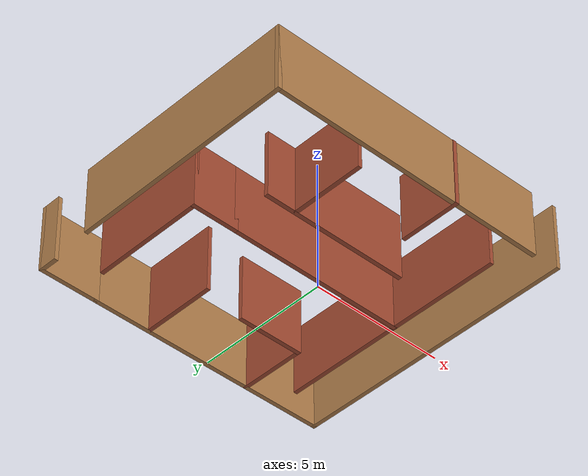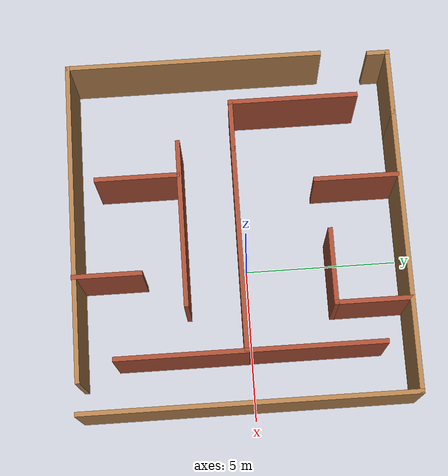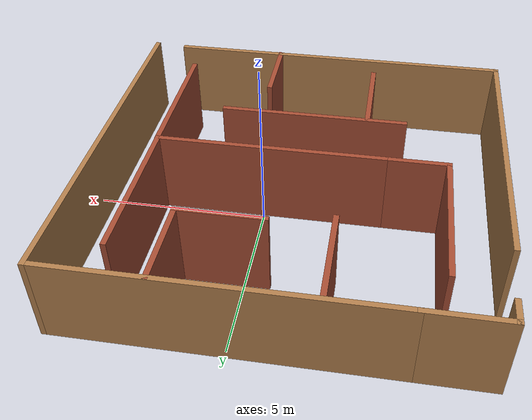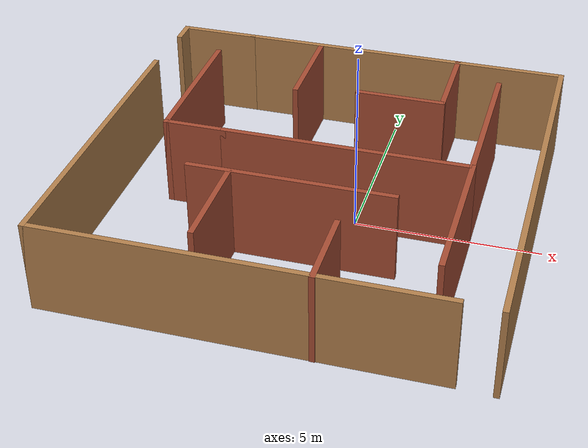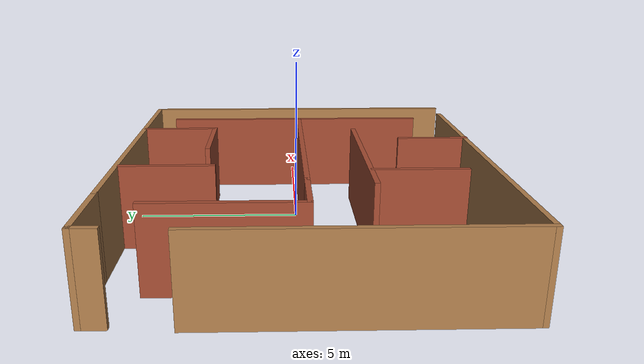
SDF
<?xml version='1.0'?>
<sdf version='1.7'>
  <model name='maze_map'>
    <pose>-1.01306 -0.193208 0 0 -0 0</pose>
    <link name='Wall_32'>
      <collision name='Wall_32_Collision'>
        <geometry>
          <box>
            <size>9.26507 0.15 2.5</size>
          </box>
        </geometry>
        <pose>0 0 1.25 0 -0 0</pose>
      </collision>
      <visual name='Wall_32_Visual'>
        <pose>0 0 1.25 0 -0 0</pose>
        <geometry>
          <box>
            <size>9.26507 0.15 2.5</size>
          </box>
        </geometry>
        <material>
          <script>
            <uri>file://media/materials/scripts/gazebo.material</uri>
            <name>Gazebo/Wood</name>
          </script>
          <ambient>1 1 1 1</ambient>
        </material>
        <meta>
          <layer>0</layer>
        </meta>
      </visual>
      <pose>1.09431 5.3 0 0 -0 0</pose>
    </link>
    <link name='Wall_33'>
      <collision name='Wall_33_Collision'>
        <geometry>
          <box>
            <size>10.75 0.15 2.5</size>
          </box>
        </geometry>
        <pose>0 0 1.25 0 -0 0</pose>
      </collision>
      <visual name='Wall_33_Visual'>
        <pose>0 0 1.25 0 -0 0</pose>
        <geometry>
          <box>
            <size>10.75 0.15 2.5</size>
          </box>
        </geometry>
        <material>
          <script>
            <uri>file://media/materials/scripts/gazebo.material</uri>
            <name>Gazebo/Wood</name>
          </script>
          <ambient>1 1 1 1</ambient>
        </material>
        <meta>
          <layer>0</layer>
        </meta>
      </visual>
      <pose>5.67844 0 0 0 -0 -1.5708</pose>
    </link>
    <link name='Wall_35'>
      <collision name='Wall_35_Collision'>
        <geometry>
          <box>
            <size>8.43856 0.15 2.5</size>
          </box>
        </geometry>
        <pose>0 0 1.25 0 -0 0</pose>
      </collision>
      <visual name='Wall_35_Visual'>
        <pose>0 0 1.25 0 -0 0</pose>
        <geometry>
          <box>
            <size>8.43856 0.15 2.5</size>
          </box>
        </geometry>
        <material>
          <script>
            <uri>file://media/materials/scripts/gazebo.material</uri>
            <name>Gazebo/Wood</name>
          </script>
          <ambient>1 1 1 1</ambient>
        </material>
        <meta>
          <layer>0</layer>
        </meta>
      </visual>
      <pose>-5.67844 -1.11167 0 0 -0 1.5708</pose>
    </link>
    <link name='Wall_38'>
      <collision name='Wall_38_Collision'>
        <geometry>
          <box>
            <size>2.25 0.15 2.5</size>
          </box>
        </geometry>
        <pose>0 0 1.25 0 -0 0</pose>
      </collision>
      <visual name='Wall_38_Visual'>
        <pose>0 0 1.25 0 -0 0</pose>
        <geometry>
          <box>
            <size>2.25 0.15 2.5</size>
          </box>
        </geometry>
        <material>
          <script>
            <uri>file://media/materials/scripts/gazebo.material</uri>
            <name>Gazebo/Wood</name>
          </script>
          <ambient>1 1 1 1</ambient>
        </material>
        <meta>
          <layer>0</layer>
        </meta>
      </visual>
      <pose>-4.51323 5.3 0 0 -0 3.14159</pose>
    </link>
    <link name='Wall_39'>
      <collision name='Wall_39_Collision'>
        <geometry>
          <box>
            <size>0.75 0.15 2.5</size>
          </box>
        </geometry>
        <pose>0 0 1.25 0 -0 0</pose>
      </collision>
      <visual name='Wall_39_Visual'>
        <pose>0 0 1.25 0 -0 0</pose>
        <geometry>
          <box>
            <size>0.75 0.15 2.5</size>
          </box>
        </geometry>
        <material>
          <script>
            <uri>file://media/materials/scripts/gazebo.material</uri>
            <name>Gazebo/Wood</name>
          </script>
          <ambient>1 1 1 1</ambient>
        </material>
        <meta>
          <layer>0</layer>
        </meta>
      </visual>
      <pose>-5.56323 5 0 0 -0 -1.5708</pose>
    </link>
    <link name='Wall_41'>
      <collision name='Wall_41_Collision'>
        <geometry>
          <box>
            <size>10.5 0.15 2.5</size>
          </box>
        </geometry>
        <pose>0 0 1.25 0 -0 0</pose>
      </collision>
      <visual name='Wall_41_Visual'>
        <pose>0 0 1.25 0 -0 0</pose>
        <geometry>
          <box>
            <size>10.5 0.15 2.5</size>
          </box>
        </geometry>
        <material>
          <script>
            <uri>file://media/materials/scripts/gazebo.material</uri>
            <name>Gazebo/Wood</name>
          </script>
          <ambient>1 1 1 1</ambient>
        </material>
        <meta>
          <layer>0</layer>
        </meta>
      </visual>
      <pose>-0.503444 -5.25595 0 0 -0 0</pose>
    </link>
    <link name='Wall_46'>
      <collision name='Wall_46_Collision'>
        <geometry>
          <box>
            <size>4.25 0.15 2.5</size>
          </box>
        </geometry>
        <pose>0 0 1.25 0 -0 0</pose>
      </collision>
      <visual name='Wall_46_Visual'>
        <pose>0 0 1.25 0 -0 0</pose>
        <geometry>
          <box>
            <size>4.25 0.15 2.5</size>
          </box>
        </geometry>
        <material>
          <script>
            <uri>file://media/materials/scripts/gazebo.material</uri>
            <name>Gazebo/Bricks</name>
          </script>
          <ambient>1 1 1 1</ambient>
        </material>
        <meta>
          <layer>0</layer>
        </meta>
      </visual>
      <pose>-4.14781 2.06569 0 0 -0 -1.5708</pose>
    </link>
    <link name='Wall_48'>
      <collision name='Wall_48_Collision'>
        <geometry>
          <box>
            <size>1.75 0.15 2.5</size>
          </box>
        </geometry>
        <pose>0 0 1.25 0 -0 0</pose>
      </collision>
      <visual name='Wall_48_Visual'>
        <pose>0 0 1.25 0 -0 0</pose>
        <geometry>
          <box>
            <size>1.75 0.15 2.5</size>
          </box>
        </geometry>
        <material>
          <script>
            <uri>file://media/materials/scripts/gazebo.material</uri>
            <name>Gazebo/Bricks</name>
          </script>
          <ambient>1 1 1 1</ambient>
        </material>
        <meta>
          <layer>0</layer>
        </meta>
      </visual>
      <pose>-3.34781 0.01569 0 0 -0 0</pose>
    </link>
    <link name='Wall_50'>
      <collision name='Wall_50_Collision'>
        <geometry>
          <box>
            <size>2.75 0.15 2.5</size>
          </box>
        </geometry>
        <pose>0 0 1.25 0 -0 0</pose>
      </collision>
      <visual name='Wall_50_Visual'>
        <pose>0 0 1.25 0 -0 0</pose>
        <geometry>
          <box>
            <size>2.75 0.15 2.5</size>
          </box>
        </geometry>
        <material>
          <script>
            <uri>file://media/materials/scripts/gazebo.material</uri>
            <name>Gazebo/Bricks</name>
          </script>
          <ambient>1 1 1 1</ambient>
        </material>
        <meta>
          <layer>0</layer>
        </meta>
      </visual>
      <pose>-1.33191 3.90182 0 0 -0 -1.5708</pose>
    </link>
    <link name='Wall_52'>
      <collision name='Wall_52_Collision'>
        <geometry>
          <box>
            <size>5.5 0.15 2.5</size>
          </box>
        </geometry>
        <pose>0 0 1.25 0 -0 0</pose>
      </collision>
      <visual name='Wall_52_Visual'>
        <pose>0 0 1.25 0 -0 0</pose>
        <geometry>
          <box>
            <size>5.5 0.15 2.5</size>
          </box>
        </geometry>
        <material>
          <script>
            <uri>file://media/materials/scripts/gazebo.material</uri>
            <name>Gazebo/Bricks</name>
          </script>
          <ambient>1 1 1 1</ambient>
        </material>
        <meta>
          <layer>0</layer>
        </meta>
      </visual>
      <pose>-0.189992 -1.77875 0 0 -0 0</pose>
    </link>
    <link name='Wall_54'>
      <collision name='Wall_54_Collision'>
        <geometry>
          <box>
            <size>2.5 0.15 2.5</size>
          </box>
        </geometry>
        <pose>0 0 1.25 0 -0 0</pose>
      </collision>
      <visual name='Wall_54_Visual'>
        <pose>0 0 1.25 0 -0 0</pose>
        <geometry>
          <box>
            <size>2.5 0.15 2.5</size>
          </box>
        </geometry>
        <material>
          <script>
            <uri>file://media/materials/scripts/gazebo.material</uri>
            <name>Gazebo/Bricks</name>
          </script>
          <ambient>1 1 1 1</ambient>
        </material>
        <meta>
          <layer>0</layer>
        </meta>
      </visual>
      <pose>2.73302 4.10477 0 0 -0 -1.5708</pose>
    </link>
    <link name='Wall_55'>
      <collision name='Wall_55_Collision'>
        <geometry>
          <box>
            <size>2.5 0.15 2.5</size>
          </box>
        </geometry>
        <pose>0 0 1.25 0 -0 0</pose>
      </collision>
      <visual name='Wall_55_Visual'>
        <pose>0 0 1.25 0 -0 0</pose>
        <geometry>
          <box>
            <size>2.5 0.15 2.5</size>
          </box>
        </geometry>
        <material>
          <script>
            <uri>file://media/materials/scripts/gazebo.material</uri>
            <name>Gazebo/Bricks</name>
          </script>
          <ambient>1 1 1 1</ambient>
        </material>
        <meta>
          <layer>0</layer>
        </meta>
      </visual>
      <pose>1.55802 2.91827 0 0 -0 3.14159</pose>
    </link>
    <link name='Wall_58'>
      <collision name='Wall_58_Collision'>
        <geometry>
          <box>
            <size>6.75 0.15 2.5</size>
          </box>
        </geometry>
        <pose>0 0 1.25 0 -0 0</pose>
      </collision>
      <visual name='Wall_58_Visual'>
        <pose>0 0 1.25 0 -0 0</pose>
        <geometry>
          <box>
            <size>6.75 0.15 2.5</size>
          </box>
        </geometry>
        <material>
          <script>
            <uri>file://media/materials/scripts/gazebo.material</uri>
            <name>Gazebo/Bricks</name>
          </script>
          <ambient>1 1 1 1</ambient>
        </material>
        <meta>
          <layer>0</layer>
        </meta>
      </visual>
      <pose>0.75219 0.01569 0 0 -0 0</pose>
    </link>
    <link name='Wall_60'>
      <collision name='Wall_60_Collision'>
        <geometry>
          <box>
            <size>2.75 0.15 2.5</size>
          </box>
        </geometry>
        <pose>0 0 1.25 0 -0 0</pose>
      </collision>
      <visual name='Wall_60_Visual'>
        <pose>0 0 1.25 0 -0 0</pose>
        <geometry>
          <box>
            <size>2.75 0.15 2.5</size>
          </box>
        </geometry>
        <material>
          <script>
            <uri>file://media/materials/scripts/gazebo.material</uri>
            <name>Gazebo/Bricks</name>
          </script>
          <ambient>1 1 1 1</ambient>
        </material>
        <meta>
          <layer>0</layer>
        </meta>
      </visual>
      <pose>-1.77739 -3.14435 0 0 -0 -1.5708</pose>
    </link>
    <link name='Wall_62'>
      <collision name='Wall_62_Collision'>
        <geometry>
          <box>
            <size>2.25 0.15 2.5</size>
          </box>
        </geometry>
        <pose>0 0 1.25 0 -0 0</pose>
      </collision>
      <visual name='Wall_62_Visual'>
        <pose>0 0 1.25 0 -0 0</pose>
        <geometry>
          <box>
            <size>2.25 0.15 2.5</size>
          </box>
        </geometry>
        <material>
          <script>
            <uri>file://media/materials/scripts/gazebo.material</uri>
            <name>Gazebo/Bricks</name>
          </script>
          <ambient>1 1 1 1</ambient>
        </material>
        <meta>
          <layer>0</layer>
        </meta>
      </visual>
      <pose>1.38211 -4.22477 0 0 -0 1.5708</pose>
    </link>
    <link name='Wall_64'>
      <collision name='Wall_64_Collision'>
        <geometry>
          <box>
            <size>4.5 0.15 2.5</size>
          </box>
        </geometry>
        <pose>0 0 1.25 0 -0 0</pose>
      </collision>
      <visual name='Wall_64_Visual'>
        <pose>0 0 1.25 0 -0 0</pose>
        <geometry>
          <box>
            <size>4.5 0.15 2.5</size>
          </box>
        </geometry>
        <material>
          <script>
            <uri>file://media/materials/scripts/gazebo.material</uri>
            <name>Gazebo/Bricks</name>
          </script>
          <ambient>1 1 1 1</ambient>
        </material>
        <meta>
          <layer>0</layer>
        </meta>
      </visual>
      <pose>4.05219 2.19069 0 0 -0 1.5708</pose>
    </link>
    <link name='Wall_69'>
      <collision name='Wall_69_Collision'>
        <geometry>
          <box>
            <size>4.25 0.15 2.5</size>
          </box>
        </geometry>
        <pose>0 0 1.25 0 -0 0</pose>
      </collision>
      <visual name='Wall_69_Visual'>
        <pose>0 0 1.25 0 -0 0</pose>
        <geometry>
          <box>
            <size>4.25 0.15 2.5</size>
          </box>
        </geometry>
        <material>
          <script>
            <uri>file://media/materials/scripts/gazebo.material</uri>
            <name>Gazebo/Bricks</name>
          </script>
          <ambient>1 1 1 1</ambient>
        </material>
        <meta>
          <layer>0</layer>
        </meta>
      </visual>
      <pose>4.06275 -2.03069 0 0 -0 -1.5708</pose>
    </link>
    <static>1</static>
  </model>
</sdf>
